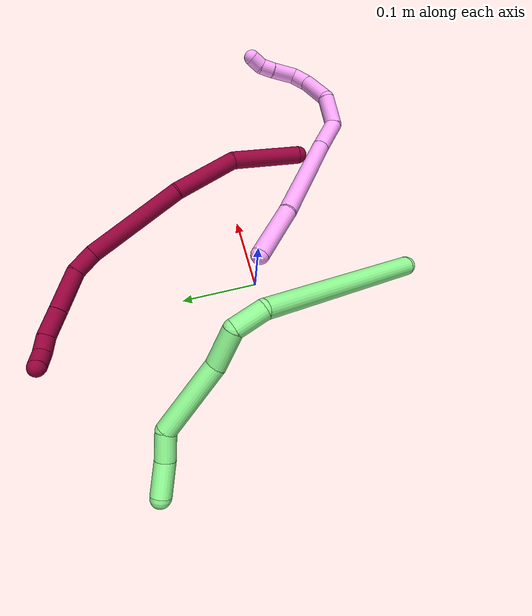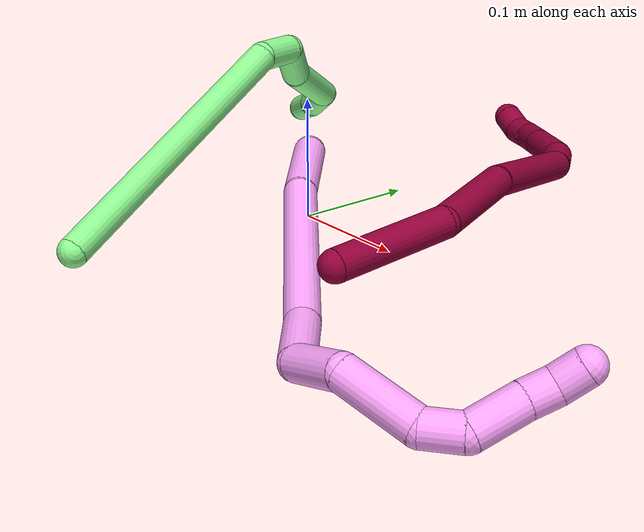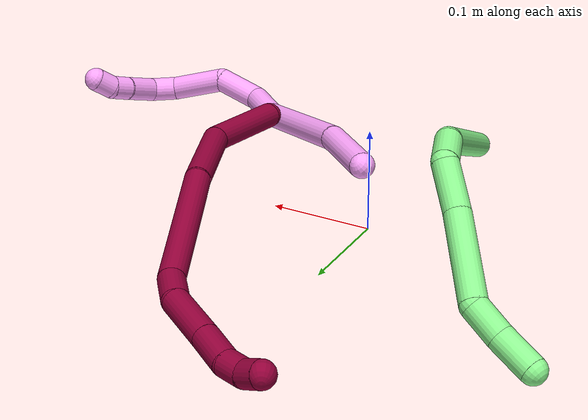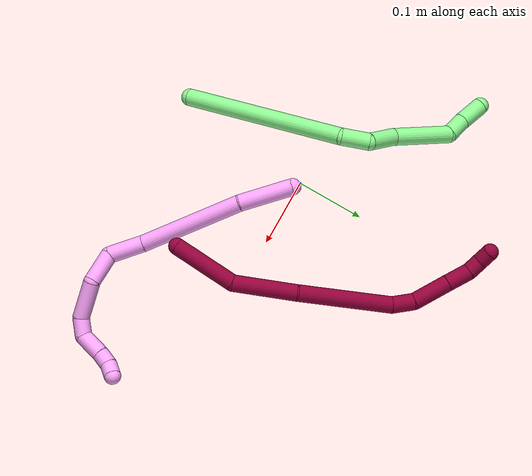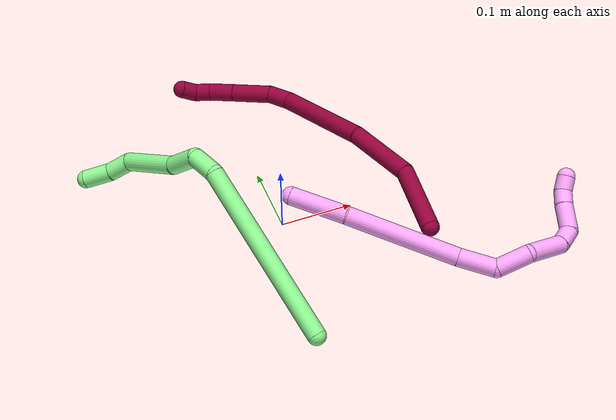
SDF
<sdf version="1.7">
 <world name="default">
  <model name="4">
   <static>0</static>
   <link name="4">
    <collision name="collision-cylinder-e_1_1_4">
     <pose>0.038137 0.007143 -0.00952 -2.49791 1.2683 -2.29032</pose>
     <geometry><cylinder><radius>0.0125</radius><length>0.079902</length></cylinder></geometry>
     <surface>
      <friction><ode><mu>1.16</mu><mu2>1.16</mu2><slip1>0</slip1><slip2>0</slip2></ode></friction>
      <contact><ode><kp>1e+06</kp><kd>1</kd><max_vel>0</max_vel><min_depth>0.001</min_depth></ode></contact>
     </surface>
    </collision>
    <visual name="visual-cylinder-e_1_1_4">
     <pose>0.038137 0.007143 -0.00952 -2.49791 1.2683 -2.29032</pose>
     <geometry><cylinder><radius>0.0125</radius><length>0.079902</length></cylinder></geometry>
     <material><ambient>1 0.65098 0.996078 1</ambient></material>
    </visual>
    <collision name="collision-cylinder-e_2_4_5">
     <pose>0.146563 0.041239 -0.040144 -2.23507 1.11758 -1.81798</pose>
     <geometry><cylinder><radius>0.0125</radius><length>0.156362</length></cylinder></geometry>
     <surface>
      <friction><ode><mu>1.16</mu><mu2>1.16</mu2><slip1>0</slip1><slip2>0</slip2></ode></friction>
      <contact><ode><kp>1e+06</kp><kd>1</kd><max_vel>0</max_vel><min_depth>0.001</min_depth></ode></contact>
     </surface>
    </collision>
    <visual name="visual-cylinder-e_2_4_5">
     <pose>0.146563 0.041239 -0.040144 -2.23507 1.11758 -1.81798</pose>
     <geometry><cylinder><radius>0.0125</radius><length>0.156362</length></cylinder></geometry>
     <material><ambient>1 0.65098 0.996078 1</ambient></material>
    </visual>
    <collision name="collision-cylinder-e_3_5_6">
     <pose>0.242234 0.072575 -0.066099 -2.40685 1.31872 -2.21987</pose>
     <geometry><cylinder><radius>0.0125</radius><length>0.052423</length></cylinder></geometry>
     <surface>
      <friction><ode><mu>1.16</mu><mu2>1.16</mu2><slip1>0</slip1><slip2>0</slip2></ode></friction>
      <contact><ode><kp>1e+06</kp><kd>1</kd><max_vel>0</max_vel><min_depth>0.001</min_depth></ode></contact>
     </surface>
    </collision>
    <visual name="visual-cylinder-e_3_5_6">
     <pose>0.242234 0.072575 -0.066099 -2.40685 1.31872 -2.21987</pose>
     <geometry><cylinder><radius>0.0125</radius><length>0.052423</length></cylinder></geometry>
     <material><ambient>1 0.65098 0.996078 1</ambient></material>
    </visual>
    <collision name="collision-cylinder-e_4_6_7">
     <pose>0.286195 0.085624 -0.059447 -0.645735 0.91134 -0.325036</pose>
     <geometry><cylinder><radius>0.0125</radius><length>0.047012</length></cylinder></geometry>
     <surface>
      <friction><ode><mu>1.16</mu><mu2>1.16</mu2><slip1>0</slip1><slip2>0</slip2></ode></friction>
      <contact><ode><kp>1e+06</kp><kd>1</kd><max_vel>0</max_vel><min_depth>0.001</min_depth></ode></contact>
     </surface>
    </collision>
    <visual name="visual-cylinder-e_4_6_7">
     <pose>0.286195 0.085624 -0.059447 -0.645735 0.91134 -0.325036</pose>
     <geometry><cylinder><radius>0.0125</radius><length>0.047012</length></cylinder></geometry>
     <material><ambient>1 0.65098 0.996078 1</ambient></material>
    </visual>
    <collision name="collision-cylinder-e_5_7_8">
     <pose>0.319242 0.118416 -0.041038 -1.29195 0.523058 -0.398216</pose>
     <geometry><cylinder><radius>0.0125</radius><length>0.057933</length></cylinder></geometry>
     <surface>
      <friction><ode><mu>1.16</mu><mu2>1.16</mu2><slip1>0</slip1><slip2>0</slip2></ode></friction>
      <contact><ode><kp>1e+06</kp><kd>1</kd><max_vel>0</max_vel><min_depth>0.001</min_depth></ode></contact>
     </surface>
    </collision>
    <visual name="visual-cylinder-e_5_7_8">
     <pose>0.319242 0.118416 -0.041038 -1.29195 0.523058 -0.398216</pose>
     <geometry><cylinder><radius>0.0125</radius><length>0.057933</length></cylinder></geometry>
     <material><ambient>1 0.65098 0.996078 1</ambient></material>
    </visual>
    <collision name="collision-cylinder-e_6_8_9">
     <pose>0.336315 0.152505 -0.02524 -0.842295 0.19256 -0.086471</pose>
     <geometry><cylinder><radius>0.0125</radius><length>0.027213</length></cylinder></geometry>
     <surface>
      <friction><ode><mu>1.16</mu><mu2>1.16</mu2><slip1>0</slip1><slip2>0</slip2></ode></friction>
      <contact><ode><kp>1e+06</kp><kd>1</kd><max_vel>0</max_vel><min_depth>0.001</min_depth></ode></contact>
     </surface>
    </collision>
    <visual name="visual-cylinder-e_6_8_9">
     <pose>0.336315 0.152505 -0.02524 -0.842295 0.19256 -0.086471</pose>
     <geometry><cylinder><radius>0.0125</radius><length>0.027213</length></cylinder></geometry>
     <material><ambient>1 0.65098 0.996078 1</ambient></material>
    </visual>
    <collision name="collision-cylinder-e_7_9_10">
     <pose>0.332457 0.168655 0.000301 -0.355662 -0.348918 0.063334</pose>
     <geometry><cylinder><radius>0.0125</radius><length>0.037802</length></cylinder></geometry>
     <surface>
      <friction><ode><mu>1.16</mu><mu2>1.16</mu2><slip1>0</slip1><slip2>0</slip2></ode></friction>
      <contact><ode><kp>1e+06</kp><kd>1</kd><max_vel>0</max_vel><min_depth>0.001</min_depth></ode></contact>
     </surface>
    </collision>
    <visual name="visual-cylinder-e_7_9_10">
     <pose>0.332457 0.168655 0.000301 -0.355662 -0.348918 0.063334</pose>
     <geometry><cylinder><radius>0.0125</radius><length>0.037802</length></cylinder></geometry>
     <material><ambient>1 0.65098 0.996078 1</ambient></material>
    </visual>
    <collision name="collision-cylinder-e_8_10_11">
     <pose>0.323548 0.178844 0.02612 -0.411743 -0.239887 0.050327</pose>
     <geometry><cylinder><radius>0.0125</radius><length>0.020599</length></cylinder></geometry>
     <surface>
      <friction><ode><mu>1.16</mu><mu2>1.16</mu2><slip1>0</slip1><slip2>0</slip2></ode></friction>
      <contact><ode><kp>1e+06</kp><kd>1</kd><max_vel>0</max_vel><min_depth>0.001</min_depth></ode></contact>
     </surface>
    </collision>
    <visual name="visual-cylinder-e_8_10_11">
     <pose>0.323548 0.178844 0.02612 -0.411743 -0.239887 0.050327</pose>
     <geometry><cylinder><radius>0.0125</radius><length>0.020599</length></cylinder></geometry>
     <material><ambient>1 0.65098 0.996078 1</ambient></material>
    </visual>
    <collision name="collision-cylinder-e_9_11_2">
     <pose>0.321958 0.184833 0.045437 -0.193234 0.08268 -0.008018</pose>
     <geometry><cylinder><radius>0.0125</radius><length>0.020754</length></cylinder></geometry>
     <surface>
      <friction><ode><mu>1.16</mu><mu2>1.16</mu2><slip1>0</slip1><slip2>0</slip2></ode></friction>
      <contact><ode><kp>1e+06</kp><kd>1</kd><max_vel>0</max_vel><min_depth>0.001</min_depth></ode></contact>
     </surface>
    </collision>
    <visual name="visual-cylinder-e_9_11_2">
     <pose>0.321958 0.184833 0.045437 -0.193234 0.08268 -0.008018</pose>
     <geometry><cylinder><radius>0.0125</radius><length>0.020754</length></cylinder></geometry>
     <material><ambient>1 0.65098 0.996078 1</ambient></material>
    </visual>
    <collision name="collision-sphere-2">
     <pose>0.322815 0.186819 0.055586 0 -0 0</pose>
     <geometry><sphere><radius>0.0125</radius></sphere></geometry>
     <surface>
      <friction><ode><mu>1.16</mu><mu2>1.16</mu2><slip1>0</slip1><slip2>0</slip2></ode></friction>
      <contact><ode><kp>1e+06</kp><kd>1</kd><max_vel>0</max_vel><min_depth>0.001</min_depth></ode></contact>
     </surface>
    </collision>
    <visual name="visual-sphere-2">
     <pose>0.322815 0.186819 0.055586 0 -0 0</pose>
     <geometry><sphere><radius>0.0125</radius></sphere></geometry>
     <material><ambient>1 0.65098 0.996078 1</ambient></material>
    </visual>
    <collision name="collision-sphere-11">
     <pose>0.321101 0.182848 0.035288 0 -0 0</pose>
     <geometry><sphere><radius>0.0125</radius></sphere></geometry>
     <surface>
      <friction><ode><mu>1.16</mu><mu2>1.16</mu2><slip1>0</slip1><slip2>0</slip2></ode></friction>
      <contact><ode><kp>1e+06</kp><kd>1</kd><max_vel>0</max_vel><min_depth>0.001</min_depth></ode></contact>
     </surface>
    </collision>
    <visual name="visual-sphere-11">
     <pose>0.321101 0.182848 0.035288 0 -0 0</pose>
     <geometry><sphere><radius>0.0125</radius></sphere></geometry>
     <material><ambient>1 0.65098 0.996078 1</ambient></material>
    </visual>
    <collision name="collision-sphere-10">
     <pose>0.325995 0.17484 0.016951 0 -0 0</pose>
     <geometry><sphere><radius>0.0125</radius></sphere></geometry>
     <surface>
      <friction><ode><mu>1.16</mu><mu2>1.16</mu2><slip1>0</slip1><slip2>0</slip2></ode></friction>
      <contact><ode><kp>1e+06</kp><kd>1</kd><max_vel>0</max_vel><min_depth>0.001</min_depth></ode></contact>
     </surface>
    </collision>
    <visual name="visual-sphere-10">
     <pose>0.325995 0.17484 0.016951 0 -0 0</pose>
     <geometry><sphere><radius>0.0125</radius></sphere></geometry>
     <material><ambient>1 0.65098 0.996078 1</ambient></material>
    </visual>
    <collision name="collision-sphere-9">
     <pose>0.338919 0.16247 -0.016349 0 -0 0</pose>
     <geometry><sphere><radius>0.0125</radius></sphere></geometry>
     <surface>
      <friction><ode><mu>1.16</mu><mu2>1.16</mu2><slip1>0</slip1><slip2>0</slip2></ode></friction>
      <contact><ode><kp>1e+06</kp><kd>1</kd><max_vel>0</max_vel><min_depth>0.001</min_depth></ode></contact>
     </surface>
    </collision>
    <visual name="visual-sphere-9">
     <pose>0.338919 0.16247 -0.016349 0 -0 0</pose>
     <geometry><sphere><radius>0.0125</radius></sphere></geometry>
     <material><ambient>1 0.65098 0.996078 1</ambient></material>
    </visual>
    <collision name="collision-sphere-4">
     <pose>0.076274 0.014285 -0.01904 0 -0 0</pose>
     <geometry><sphere><radius>0.0125</radius></sphere></geometry>
     <surface>
      <friction><ode><mu>1.16</mu><mu2>1.16</mu2><slip1>0</slip1><slip2>0</slip2></ode></friction>
      <contact><ode><kp>1e+06</kp><kd>1</kd><max_vel>0</max_vel><min_depth>0.001</min_depth></ode></contact>
     </surface>
    </collision>
    <visual name="visual-sphere-4">
     <pose>0.076274 0.014285 -0.01904 0 -0 0</pose>
     <geometry><sphere><radius>0.0125</radius></sphere></geometry>
     <material><ambient>1 0.65098 0.996078 1</ambient></material>
    </visual>
    <collision name="collision-sphere-1">
     <geometry><sphere><radius>0.0125</radius></sphere></geometry>
     <surface>
      <friction><ode><mu>1.16</mu><mu2>1.16</mu2><slip1>0</slip1><slip2>0</slip2></ode></friction>
      <contact><ode><kp>1e+06</kp><kd>1</kd><max_vel>0</max_vel><min_depth>0.001</min_depth></ode></contact>
     </surface>
    </collision>
    <visual name="visual-sphere-1">
     <geometry><sphere><radius>0.0125</radius></sphere></geometry>
     <material><ambient>1 0.65098 0.996078 1</ambient></material>
    </visual>
    <collision name="collision-sphere-8">
     <pose>0.333712 0.14254 -0.034131 0 -0 0</pose>
     <geometry><sphere><radius>0.0125</radius></sphere></geometry>
     <surface>
      <friction><ode><mu>1.16</mu><mu2>1.16</mu2><slip1>0</slip1><slip2>0</slip2></ode></friction>
      <contact><ode><kp>1e+06</kp><kd>1</kd><max_vel>0</max_vel><min_depth>0.001</min_depth></ode></contact>
     </surface>
    </collision>
    <visual name="visual-sphere-8">
     <pose>0.333712 0.14254 -0.034131 0 -0 0</pose>
     <geometry><sphere><radius>0.0125</radius></sphere></geometry>
     <material><ambient>1 0.65098 0.996078 1</ambient></material>
    </visual>
    <collision name="collision-sphere-5">
     <pose>0.216851 0.068192 -0.061248 0 -0 0</pose>
     <geometry><sphere><radius>0.0125</radius></sphere></geometry>
     <surface>
      <friction><ode><mu>1.16</mu><mu2>1.16</mu2><slip1>0</slip1><slip2>0</slip2></ode></friction>
      <contact><ode><kp>1e+06</kp><kd>1</kd><max_vel>0</max_vel><min_depth>0.001</min_depth></ode></contact>
     </surface>
    </collision>
    <visual name="visual-sphere-5">
     <pose>0.216851 0.068192 -0.061248 0 -0 0</pose>
     <geometry><sphere><radius>0.0125</radius></sphere></geometry>
     <material><ambient>1 0.65098 0.996078 1</ambient></material>
    </visual>
    <collision name="collision-sphere-6">
     <pose>0.267617 0.076957 -0.07095 0 -0 0</pose>
     <geometry><sphere><radius>0.0125</radius></sphere></geometry>
     <surface>
      <friction><ode><mu>1.16</mu><mu2>1.16</mu2><slip1>0</slip1><slip2>0</slip2></ode></friction>
      <contact><ode><kp>1e+06</kp><kd>1</kd><max_vel>0</max_vel><min_depth>0.001</min_depth></ode></contact>
     </surface>
    </collision>
    <visual name="visual-sphere-6">
     <pose>0.267617 0.076957 -0.07095 0 -0 0</pose>
     <geometry><sphere><radius>0.0125</radius></sphere></geometry>
     <material><ambient>1 0.65098 0.996078 1</ambient></material>
    </visual>
    <collision name="collision-sphere-7">
     <pose>0.304772 0.094291 -0.047945 0 -0 0</pose>
     <geometry><sphere><radius>0.0125</radius></sphere></geometry>
     <surface>
      <friction><ode><mu>1.16</mu><mu2>1.16</mu2><slip1>0</slip1><slip2>0</slip2></ode></friction>
      <contact><ode><kp>1e+06</kp><kd>1</kd><max_vel>0</max_vel><min_depth>0.001</min_depth></ode></contact>
     </surface>
    </collision>
    <visual name="visual-sphere-7">
     <pose>0.304772 0.094291 -0.047945 0 -0 0</pose>
     <geometry><sphere><radius>0.0125</radius></sphere></geometry>
     <material><ambient>1 0.65098 0.996078 1</ambient></material>
    </visual>
    <inertial>
     <pose>0.211356 0.079509 -0.029739 0 -0 0</pose>
     <mass>0.5</mass>
     <inertia>
      <ixx>-0.000147</ixx>
      <ixy>0</ixy>
      <ixz>0</ixz>
      <iyy>0.000213</iyy>
      <iyz>0</iyz>
      <izz>-0.000507</izz>
     </inertia>
    </inertial>
   </link>
   <pose>0.011163 -0.007051 0.060672 -0.764372 -0.219179 -0.717006</pose>
  </model>
  <model name="8">
   <static>0</static>
   <link name="8">
    <collision name="collision-cylinder-e_1_1_4">
     <pose>-0.024141 -0.013406 0.039824 0.324718 -0.521462 -0.08735</pose>
     <geometry><cylinder><radius>0.0125</radius><length>0.096922</length></cylinder></geometry>
     <surface>
      <friction><ode><mu>1.16</mu><mu2>1.16</mu2><slip1>0</slip1><slip2>0</slip2></ode></friction>
      <contact><ode><kp>1e+06</kp><kd>1</kd><max_vel>0</max_vel><min_depth>0.001</min_depth></ode></contact>
     </surface>
    </collision>
    <visual name="visual-cylinder-e_1_1_4">
     <pose>-0.024141 -0.013406 0.039824 0.324718 -0.521462 -0.08735</pose>
     <geometry><cylinder><radius>0.0125</radius><length>0.096922</length></cylinder></geometry>
     <material><ambient>0.584314 0 0.227451 1</ambient></material>
    </visual>
    <collision name="collision-cylinder-e_2_4_5">
     <pose>-0.058174 -0.026483 0.125874 -0.007113 -0.210821 0.000753</pose>
     <geometry><cylinder><radius>0.0125</radius><length>0.094547</length></cylinder></geometry>
     <surface>
      <friction><ode><mu>1.16</mu><mu2>1.16</mu2><slip1>0</slip1><slip2>0</slip2></ode></friction>
      <contact><ode><kp>1e+06</kp><kd>1</kd><max_vel>0</max_vel><min_depth>0.001</min_depth></ode></contact>
     </surface>
    </collision>
    <visual name="visual-cylinder-e_2_4_5">
     <pose>-0.058174 -0.026483 0.125874 -0.007113 -0.210821 0.000753</pose>
     <geometry><cylinder><radius>0.0125</radius><length>0.094547</length></cylinder></geometry>
     <material><ambient>0.584314 0 0.227451 1</ambient></material>
    </visual>
    <collision name="collision-cylinder-e_3_5_6">
     <pose>-0.069665 -0.033556 0.242236 0.105145 -0.022666 -0.001193</pose>
     <geometry><cylinder><radius>0.0125</radius><length>0.141089</length></cylinder></geometry>
     <surface>
      <friction><ode><mu>1.16</mu><mu2>1.16</mu2><slip1>0</slip1><slip2>0</slip2></ode></friction>
      <contact><ode><kp>1e+06</kp><kd>1</kd><max_vel>0</max_vel><min_depth>0.001</min_depth></ode></contact>
     </surface>
    </collision>
    <visual name="visual-cylinder-e_3_5_6">
     <pose>-0.069665 -0.033556 0.242236 0.105145 -0.022666 -0.001193</pose>
     <geometry><cylinder><radius>0.0125</radius><length>0.141089</length></cylinder></geometry>
     <material><ambient>0.584314 0 0.227451 1</ambient></material>
    </visual>
    <collision name="collision-cylinder-e_4_6_7">
     <pose>-0.070677 -0.037677 0.32851 -0.200627 0.035626 -0.003586</pose>
     <geometry><cylinder><radius>0.0125</radius><length>0.032955</length></cylinder></geometry>
     <surface>
      <friction><ode><mu>1.16</mu><mu2>1.16</mu2><slip1>0</slip1><slip2>0</slip2></ode></friction>
      <contact><ode><kp>1e+06</kp><kd>1</kd><max_vel>0</max_vel><min_depth>0.001</min_depth></ode></contact>
     </surface>
    </collision>
    <visual name="visual-cylinder-e_4_6_7">
     <pose>-0.070677 -0.037677 0.32851 -0.200627 0.035626 -0.003586</pose>
     <geometry><cylinder><radius>0.0125</radius><length>0.032955</length></cylinder></geometry>
     <material><ambient>0.584314 0 0.227451 1</ambient></material>
    </visual>
    <collision name="collision-cylinder-e_5_7_8">
     <pose>-0.062455 -0.022599 0.368568 -0.458108 0.278824 -0.065408</pose>
     <geometry><cylinder><radius>0.0125</radius><length>0.055487</length></cylinder></geometry>
     <surface>
      <friction><ode><mu>1.16</mu><mu2>1.16</mu2><slip1>0</slip1><slip2>0</slip2></ode></friction>
      <contact><ode><kp>1e+06</kp><kd>1</kd><max_vel>0</max_vel><min_depth>0.001</min_depth></ode></contact>
     </surface>
    </collision>
    <visual name="visual-cylinder-e_5_7_8">
     <pose>-0.062455 -0.022599 0.368568 -0.458108 0.278824 -0.065408</pose>
     <geometry><cylinder><radius>0.0125</radius><length>0.055487</length></cylinder></geometry>
     <material><ambient>0.584314 0 0.227451 1</ambient></material>
    </visual>
    <collision name="collision-cylinder-e_6_8_9">
     <pose>-0.049753 -0.003493 0.408154 -0.436647 0.285064 -0.063655</pose>
     <geometry><cylinder><radius>0.0125</radius><length>0.036025</length></cylinder></geometry>
     <surface>
      <friction><ode><mu>1.16</mu><mu2>1.16</mu2><slip1>0</slip1><slip2>0</slip2></ode></friction>
      <contact><ode><kp>1e+06</kp><kd>1</kd><max_vel>0</max_vel><min_depth>0.001</min_depth></ode></contact>
     </surface>
    </collision>
    <visual name="visual-cylinder-e_6_8_9">
     <pose>-0.049753 -0.003493 0.408154 -0.436647 0.285064 -0.063655</pose>
     <geometry><cylinder><radius>0.0125</radius><length>0.036025</length></cylinder></geometry>
     <material><ambient>0.584314 0 0.227451 1</ambient></material>
    </visual>
    <collision name="collision-cylinder-e_7_9_10">
     <pose>-0.041079 0.010747 0.431637 -0.725218 0.332538 -0.127163</pose>
     <geometry><cylinder><radius>0.0125</radius><length>0.022107</length></cylinder></geometry>
     <surface>
      <friction><ode><mu>1.16</mu><mu2>1.16</mu2><slip1>0</slip1><slip2>0</slip2></ode></friction>
      <contact><ode><kp>1e+06</kp><kd>1</kd><max_vel>0</max_vel><min_depth>0.001</min_depth></ode></contact>
     </surface>
    </collision>
    <visual name="visual-cylinder-e_7_9_10">
     <pose>-0.041079 0.010747 0.431637 -0.725218 0.332538 -0.127163</pose>
     <geometry><cylinder><radius>0.0125</radius><length>0.022107</length></cylinder></geometry>
     <material><ambient>0.584314 0 0.227451 1</ambient></material>
    </visual>
    <collision name="collision-cylinder-e_8_10_2">
     <pose>-0.03742 0.026228 0.445435 -0.96059 0.0049 -0.002553</pose>
     <geometry><cylinder><radius>0.0125</radius><length>0.020868</length></cylinder></geometry>
     <surface>
      <friction><ode><mu>1.16</mu><mu2>1.16</mu2><slip1>0</slip1><slip2>0</slip2></ode></friction>
      <contact><ode><kp>1e+06</kp><kd>1</kd><max_vel>0</max_vel><min_depth>0.001</min_depth></ode></contact>
     </surface>
    </collision>
    <visual name="visual-cylinder-e_8_10_2">
     <pose>-0.03742 0.026228 0.445435 -0.96059 0.0049 -0.002553</pose>
     <geometry><cylinder><radius>0.0125</radius><length>0.020868</length></cylinder></geometry>
     <material><ambient>0.584314 0 0.227451 1</ambient></material>
    </visual>
    <collision name="collision-sphere-2">
     <pose>-0.037369 0.034779 0.451414 0 -0 0</pose>
     <geometry><sphere><radius>0.0125</radius></sphere></geometry>
     <surface>
      <friction><ode><mu>1.16</mu><mu2>1.16</mu2><slip1>0</slip1><slip2>0</slip2></ode></friction>
      <contact><ode><kp>1e+06</kp><kd>1</kd><max_vel>0</max_vel><min_depth>0.001</min_depth></ode></contact>
     </surface>
    </collision>
    <visual name="visual-sphere-2">
     <pose>-0.037369 0.034779 0.451414 0 -0 0</pose>
     <geometry><sphere><radius>0.0125</radius></sphere></geometry>
     <material><ambient>0.584314 0 0.227451 1</ambient></material>
    </visual>
    <collision name="collision-sphere-10">
     <pose>-0.037471 0.017677 0.439456 0 -0 0</pose>
     <geometry><sphere><radius>0.0125</radius></sphere></geometry>
     <surface>
      <friction><ode><mu>1.16</mu><mu2>1.16</mu2><slip1>0</slip1><slip2>0</slip2></ode></friction>
      <contact><ode><kp>1e+06</kp><kd>1</kd><max_vel>0</max_vel><min_depth>0.001</min_depth></ode></contact>
     </surface>
    </collision>
    <visual name="visual-sphere-10">
     <pose>-0.037471 0.017677 0.439456 0 -0 0</pose>
     <geometry><sphere><radius>0.0125</radius></sphere></geometry>
     <material><ambient>0.584314 0 0.227451 1</ambient></material>
    </visual>
    <collision name="collision-sphere-9">
     <pose>-0.044688 0.003817 0.423818 0 -0 0</pose>
     <geometry><sphere><radius>0.0125</radius></sphere></geometry>
     <surface>
      <friction><ode><mu>1.16</mu><mu2>1.16</mu2><slip1>0</slip1><slip2>0</slip2></ode></friction>
      <contact><ode><kp>1e+06</kp><kd>1</kd><max_vel>0</max_vel><min_depth>0.001</min_depth></ode></contact>
     </surface>
    </collision>
    <visual name="visual-sphere-9">
     <pose>-0.044688 0.003817 0.423818 0 -0 0</pose>
     <geometry><sphere><radius>0.0125</radius></sphere></geometry>
     <material><ambient>0.584314 0 0.227451 1</ambient></material>
    </visual>
    <collision name="collision-sphere-4">
     <pose>-0.048281 -0.026812 0.079648 0 -0 0</pose>
     <geometry><sphere><radius>0.0125</radius></sphere></geometry>
     <surface>
      <friction><ode><mu>1.16</mu><mu2>1.16</mu2><slip1>0</slip1><slip2>0</slip2></ode></friction>
      <contact><ode><kp>1e+06</kp><kd>1</kd><max_vel>0</max_vel><min_depth>0.001</min_depth></ode></contact>
     </surface>
    </collision>
    <visual name="visual-sphere-4">
     <pose>-0.048281 -0.026812 0.079648 0 -0 0</pose>
     <geometry><sphere><radius>0.0125</radius></sphere></geometry>
     <material><ambient>0.584314 0 0.227451 1</ambient></material>
    </visual>
    <collision name="collision-sphere-1">
     <geometry><sphere><radius>0.0125</radius></sphere></geometry>
     <surface>
      <friction><ode><mu>1.16</mu><mu2>1.16</mu2><slip1>0</slip1><slip2>0</slip2></ode></friction>
      <contact><ode><kp>1e+06</kp><kd>1</kd><max_vel>0</max_vel><min_depth>0.001</min_depth></ode></contact>
     </surface>
    </collision>
    <visual name="visual-sphere-1">
     <geometry><sphere><radius>0.0125</radius></sphere></geometry>
     <material><ambient>0.584314 0 0.227451 1</ambient></material>
    </visual>
    <collision name="collision-sphere-8">
     <pose>-0.054819 -0.010804 0.39249 0 -0 0</pose>
     <geometry><sphere><radius>0.0125</radius></sphere></geometry>
     <surface>
      <friction><ode><mu>1.16</mu><mu2>1.16</mu2><slip1>0</slip1><slip2>0</slip2></ode></friction>
      <contact><ode><kp>1e+06</kp><kd>1</kd><max_vel>0</max_vel><min_depth>0.001</min_depth></ode></contact>
     </surface>
    </collision>
    <visual name="visual-sphere-8">
     <pose>-0.054819 -0.010804 0.39249 0 -0 0</pose>
     <geometry><sphere><radius>0.0125</radius></sphere></geometry>
     <material><ambient>0.584314 0 0.227451 1</ambient></material>
    </visual>
    <collision name="collision-sphere-5">
     <pose>-0.068066 -0.026155 0.172099 0 -0 0</pose>
     <geometry><sphere><radius>0.0125</radius></sphere></geometry>
     <surface>
      <friction><ode><mu>1.16</mu><mu2>1.16</mu2><slip1>0</slip1><slip2>0</slip2></ode></friction>
      <contact><ode><kp>1e+06</kp><kd>1</kd><max_vel>0</max_vel><min_depth>0.001</min_depth></ode></contact>
     </surface>
    </collision>
    <visual name="visual-sphere-5">
     <pose>-0.068066 -0.026155 0.172099 0 -0 0</pose>
     <geometry><sphere><radius>0.0125</radius></sphere></geometry>
     <material><ambient>0.584314 0 0.227451 1</ambient></material>
    </visual>
    <collision name="collision-sphere-6">
     <pose>-0.071264 -0.040958 0.312373 0 -0 0</pose>
     <geometry><sphere><radius>0.0125</radius></sphere></geometry>
     <surface>
      <friction><ode><mu>1.16</mu><mu2>1.16</mu2><slip1>0</slip1><slip2>0</slip2></ode></friction>
      <contact><ode><kp>1e+06</kp><kd>1</kd><max_vel>0</max_vel><min_depth>0.001</min_depth></ode></contact>
     </surface>
    </collision>
    <visual name="visual-sphere-6">
     <pose>-0.071264 -0.040958 0.312373 0 -0 0</pose>
     <geometry><sphere><radius>0.0125</radius></sphere></geometry>
     <material><ambient>0.584314 0 0.227451 1</ambient></material>
    </visual>
    <collision name="collision-sphere-7">
     <pose>-0.07009 -0.034395 0.344646 0 -0 0</pose>
     <geometry><sphere><radius>0.0125</radius></sphere></geometry>
     <surface>
      <friction><ode><mu>1.16</mu><mu2>1.16</mu2><slip1>0</slip1><slip2>0</slip2></ode></friction>
      <contact><ode><kp>1e+06</kp><kd>1</kd><max_vel>0</max_vel><min_depth>0.001</min_depth></ode></contact>
     </surface>
    </collision>
    <visual name="visual-sphere-7">
     <pose>-0.07009 -0.034395 0.344646 0 -0 0</pose>
     <geometry><sphere><radius>0.0125</radius></sphere></geometry>
     <material><ambient>0.584314 0 0.227451 1</ambient></material>
    </visual>
    <inertial>
     <pose>-0.05389 -0.020748 0.229512 0 -0 0</pose>
     <mass>0.5</mass>
     <inertia>
      <ixx>0.000398</ixx>
      <ixy>0</ixy>
      <ixz>0</ixz>
      <iyy>0.00041</iyy>
      <iyz>0</iyz>
      <izz>0.000123</izz>
     </inertia>
    </inertial>
   </link>
   <pose>0.168757 -0.109106 0.03985 1.82583 0.916241 -2.44664</pose>
  </model>
  <model name="13">
   <static>0</static>
   <link name="13">
    <collision name="collision-cylinder-e_1_1_4">
     <pose>0.042926 0.112177 0.033495 -1.28064 0.351444 -0.263041</pose>
     <geometry><cylinder><radius>0.0125</radius><length>0.249385</length></cylinder></geometry>
     <surface>
      <friction><ode><mu>1.16</mu><mu2>1.16</mu2><slip1>0</slip1><slip2>0</slip2></ode></friction>
      <contact><ode><kp>1e+06</kp><kd>1</kd><max_vel>0</max_vel><min_depth>0.001</min_depth></ode></contact>
     </surface>
    </collision>
    <visual name="visual-cylinder-e_1_1_4">
     <pose>0.042926 0.112177 0.033495 -1.28064 0.351444 -0.263041</pose>
     <geometry><cylinder><radius>0.0125</radius><length>0.249385</length></cylinder></geometry>
     <material><ambient>0.564706 0.984314 0.572549 1</ambient></material>
    </visual>
    <collision name="collision-cylinder-e_2_4_5">
     <pose>0.085414 0.240962 0.078828 -0.951497 -0.02146 0.011057</pose>
     <geometry><cylinder><radius>0.0125</radius><length>0.040801</length></cylinder></geometry>
     <surface>
      <friction><ode><mu>1.16</mu><mu2>1.16</mu2><slip1>0</slip1><slip2>0</slip2></ode></friction>
      <contact><ode><kp>1e+06</kp><kd>1</kd><max_vel>0</max_vel><min_depth>0.001</min_depth></ode></contact>
     </surface>
    </collision>
    <visual name="visual-cylinder-e_2_4_5">
     <pose>0.085414 0.240962 0.078828 -0.951497 -0.02146 0.011057</pose>
     <geometry><cylinder><radius>0.0125</radius><length>0.040801</length></cylinder></geometry>
     <material><ambient>0.564706 0.984314 0.572549 1</ambient></material>
    </visual>
    <collision name="collision-cylinder-e_3_5_6">
     <pose>0.075528 0.2635 0.11144 -0.278079 -0.41232 0.058516</pose>
     <geometry><cylinder><radius>0.0125</radius><length>0.047156</length></cylinder></geometry>
     <surface>
      <friction><ode><mu>1.16</mu><mu2>1.16</mu2><slip1>0</slip1><slip2>0</slip2></ode></friction>
      <contact><ode><kp>1e+06</kp><kd>1</kd><max_vel>0</max_vel><min_depth>0.001</min_depth></ode></contact>
     </surface>
    </collision>
    <visual name="visual-cylinder-e_3_5_6">
     <pose>0.075528 0.2635 0.11144 -0.278079 -0.41232 0.058516</pose>
     <geometry><cylinder><radius>0.0125</radius><length>0.047156</length></cylinder></geometry>
     <material><ambient>0.564706 0.984314 0.572549 1</ambient></material>
    </visual>
    <collision name="collision-cylinder-e_4_6_7">
     <pose>0.054395 0.2921 0.17032 -0.536638 -0.257651 0.071205</pose>
     <geometry><cylinder><radius>0.0125</radius><length>0.09171</length></cylinder></geometry>
     <surface>
      <friction><ode><mu>1.16</mu><mu2>1.16</mu2><slip1>0</slip1><slip2>0</slip2></ode></friction>
      <contact><ode><kp>1e+06</kp><kd>1</kd><max_vel>0</max_vel><min_depth>0.001</min_depth></ode></contact>
     </surface>
    </collision>
    <visual name="visual-cylinder-e_4_6_7">
     <pose>0.054395 0.2921 0.17032 -0.536638 -0.257651 0.071205</pose>
     <geometry><cylinder><radius>0.0125</radius><length>0.09171</length></cylinder></geometry>
     <material><ambient>0.564706 0.984314 0.572549 1</ambient></material>
    </visual>
    <collision name="collision-cylinder-e_5_7_8">
     <pose>0.041102 0.313498 0.224605 0.078413 -0.098808 -0.003879</pose>
     <geometry><cylinder><radius>0.0125</radius><length>0.032612</length></cylinder></geometry>
     <surface>
      <friction><ode><mu>1.16</mu><mu2>1.16</mu2><slip1>0</slip1><slip2>0</slip2></ode></friction>
      <contact><ode><kp>1e+06</kp><kd>1</kd><max_vel>0</max_vel><min_depth>0.001</min_depth></ode></contact>
     </surface>
    </collision>
    <visual name="visual-cylinder-e_5_7_8">
     <pose>0.041102 0.313498 0.224605 0.078413 -0.098808 -0.003879</pose>
     <geometry><cylinder><radius>0.0125</radius><length>0.032612</length></cylinder></geometry>
     <material><ambient>0.564706 0.984314 0.572549 1</ambient></material>
    </visual>
    <collision name="collision-cylinder-e_6_8_2">
     <pose>0.040594 0.313163 0.259895 -0.048928 0.057473 -0.001407</pose>
     <geometry><cylinder><radius>0.0125</radius><length>0.038336</length></cylinder></geometry>
     <surface>
      <friction><ode><mu>1.16</mu><mu2>1.16</mu2><slip1>0</slip1><slip2>0</slip2></ode></friction>
      <contact><ode><kp>1e+06</kp><kd>1</kd><max_vel>0</max_vel><min_depth>0.001</min_depth></ode></contact>
     </surface>
    </collision>
    <visual name="visual-cylinder-e_6_8_2">
     <pose>0.040594 0.313163 0.259895 -0.048928 0.057473 -0.001407</pose>
     <geometry><cylinder><radius>0.0125</radius><length>0.038336</length></cylinder></geometry>
     <material><ambient>0.564706 0.984314 0.572549 1</ambient></material>
    </visual>
    <collision name="collision-sphere-2">
     <pose>0.041695 0.314099 0.279009 0 -0 0</pose>
     <geometry><sphere><radius>0.0125</radius></sphere></geometry>
     <surface>
      <friction><ode><mu>1.16</mu><mu2>1.16</mu2><slip1>0</slip1><slip2>0</slip2></ode></friction>
      <contact><ode><kp>1e+06</kp><kd>1</kd><max_vel>0</max_vel><min_depth>0.001</min_depth></ode></contact>
     </surface>
    </collision>
    <visual name="visual-sphere-2">
     <pose>0.041695 0.314099 0.279009 0 -0 0</pose>
     <geometry><sphere><radius>0.0125</radius></sphere></geometry>
     <material><ambient>0.564706 0.984314 0.572549 1</ambient></material>
    </visual>
    <collision name="collision-sphere-4">
     <pose>0.085852 0.224354 0.066989 0 -0 0</pose>
     <geometry><sphere><radius>0.0125</radius></sphere></geometry>
     <surface>
      <friction><ode><mu>1.16</mu><mu2>1.16</mu2><slip1>0</slip1><slip2>0</slip2></ode></friction>
      <contact><ode><kp>1e+06</kp><kd>1</kd><max_vel>0</max_vel><min_depth>0.001</min_depth></ode></contact>
     </surface>
    </collision>
    <visual name="visual-sphere-4">
     <pose>0.085852 0.224354 0.066989 0 -0 0</pose>
     <geometry><sphere><radius>0.0125</radius></sphere></geometry>
     <material><ambient>0.564706 0.984314 0.572549 1</ambient></material>
    </visual>
    <collision name="collision-sphere-1">
     <geometry><sphere><radius>0.0125</radius></sphere></geometry>
     <surface>
      <friction><ode><mu>1.16</mu><mu2>1.16</mu2><slip1>0</slip1><slip2>0</slip2></ode></friction>
      <contact><ode><kp>1e+06</kp><kd>1</kd><max_vel>0</max_vel><min_depth>0.001</min_depth></ode></contact>
     </surface>
    </collision>
    <visual name="visual-sphere-1">
     <geometry><sphere><radius>0.0125</radius></sphere></geometry>
     <material><ambient>0.564706 0.984314 0.572549 1</ambient></material>
    </visual>
    <collision name="collision-sphere-8">
     <pose>0.039493 0.312227 0.240782 0 -0 0</pose>
     <geometry><sphere><radius>0.0125</radius></sphere></geometry>
     <surface>
      <friction><ode><mu>1.16</mu><mu2>1.16</mu2><slip1>0</slip1><slip2>0</slip2></ode></friction>
      <contact><ode><kp>1e+06</kp><kd>1</kd><max_vel>0</max_vel><min_depth>0.001</min_depth></ode></contact>
     </surface>
    </collision>
    <visual name="visual-sphere-8">
     <pose>0.039493 0.312227 0.240782 0 -0 0</pose>
     <geometry><sphere><radius>0.0125</radius></sphere></geometry>
     <material><ambient>0.564706 0.984314 0.572549 1</ambient></material>
    </visual>
    <collision name="collision-sphere-5">
     <pose>0.084976 0.25757 0.090667 0 -0 0</pose>
     <geometry><sphere><radius>0.0125</radius></sphere></geometry>
     <surface>
      <friction><ode><mu>1.16</mu><mu2>1.16</mu2><slip1>0</slip1><slip2>0</slip2></ode></friction>
      <contact><ode><kp>1e+06</kp><kd>1</kd><max_vel>0</max_vel><min_depth>0.001</min_depth></ode></contact>
     </surface>
    </collision>
    <visual name="visual-sphere-5">
     <pose>0.084976 0.25757 0.090667 0 -0 0</pose>
     <geometry><sphere><radius>0.0125</radius></sphere></geometry>
     <material><ambient>0.564706 0.984314 0.572549 1</ambient></material>
    </visual>
    <collision name="collision-sphere-6">
     <pose>0.066079 0.26943 0.132212 0 -0 0</pose>
     <geometry><sphere><radius>0.0125</radius></sphere></geometry>
     <surface>
      <friction><ode><mu>1.16</mu><mu2>1.16</mu2><slip1>0</slip1><slip2>0</slip2></ode></friction>
      <contact><ode><kp>1e+06</kp><kd>1</kd><max_vel>0</max_vel><min_depth>0.001</min_depth></ode></contact>
     </surface>
    </collision>
    <visual name="visual-sphere-6">
     <pose>0.066079 0.26943 0.132212 0 -0 0</pose>
     <geometry><sphere><radius>0.0125</radius></sphere></geometry>
     <material><ambient>0.564706 0.984314 0.572549 1</ambient></material>
    </visual>
    <collision name="collision-sphere-7">
     <pose>0.04271 0.314769 0.208428 0 -0 0</pose>
     <geometry><sphere><radius>0.0125</radius></sphere></geometry>
     <surface>
      <friction><ode><mu>1.16</mu><mu2>1.16</mu2><slip1>0</slip1><slip2>0</slip2></ode></friction>
      <contact><ode><kp>1e+06</kp><kd>1</kd><max_vel>0</max_vel><min_depth>0.001</min_depth></ode></contact>
     </surface>
    </collision>
    <visual name="visual-sphere-7">
     <pose>0.04271 0.314769 0.208428 0 -0 0</pose>
     <geometry><sphere><radius>0.0125</radius></sphere></geometry>
     <material><ambient>0.564706 0.984314 0.572549 1</ambient></material>
    </visual>
    <inertial>
     <pose>0.051274 0.1985 0.099465 0 -0 0</pose>
     <mass>0.5</mass>
     <inertia>
      <ixx>0.000964</ixx>
      <ixy>0</ixy>
      <ixz>0</ixz>
      <iyy>0.000267</iyy>
      <iyz>0</iyz>
      <izz>-0.001618</izz>
     </inertia>
    </inertial>
   </link>
   <pose>-0.027861 -0.201762 0.011497 2.58576 -1.04147 -2.84656</pose>
  </model>
 </world>
</sdf>
